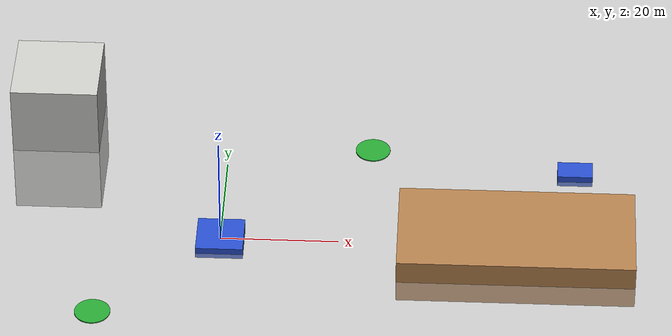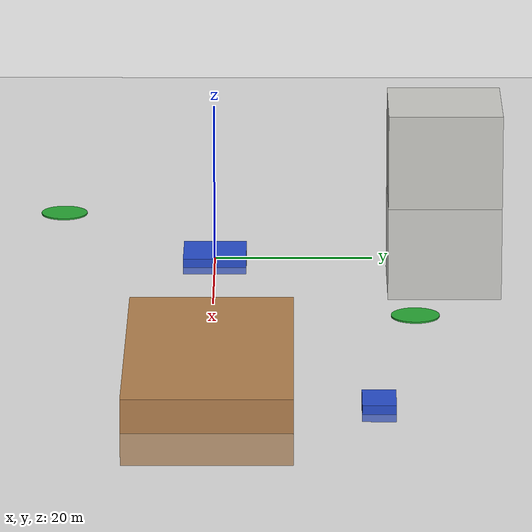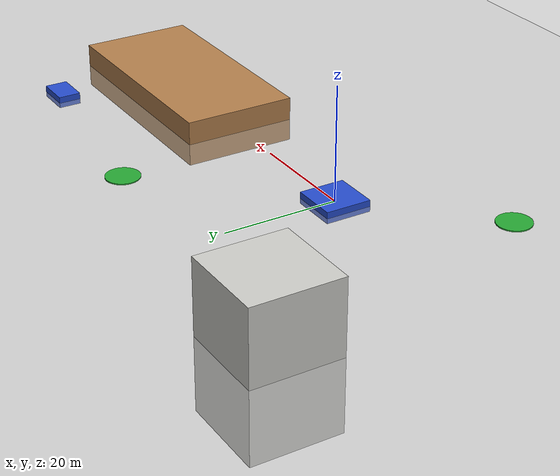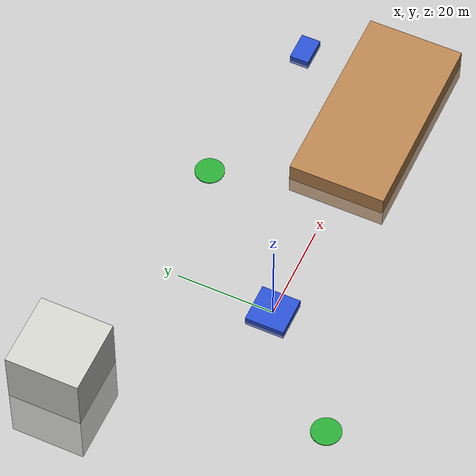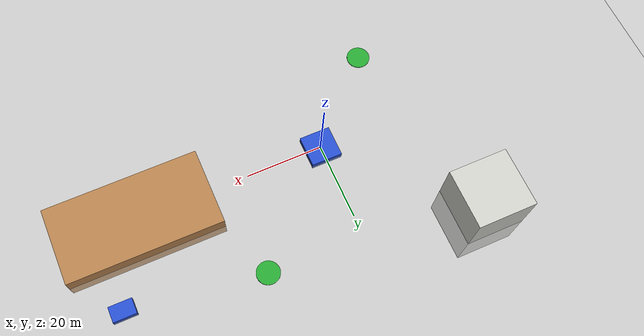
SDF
<?xml version="1.0" ?>
<sdf version="1.6">
  <world name="delivery_city">

    <!-- Physics settings -->
    <physics name="default_physics" default="0" type="ode">
      <gravity>0 0 -9.8066</gravity>
      <ode>
        <solver>
          <type>quick</type>
          <iters>10</iters>
          <sor>1.3</sor>
          <use_dynamic_moi_rescaling>0</use_dynamic_moi_rescaling>
        </solver>
        <constraints>
          <cfm>0</cfm>
          <erp>0.2</erp>
          <contact_max_correcting_vel>100</contact_max_correcting_vel>
          <contact_surface_layer>0.001</contact_surface_layer>
        </constraints>
      </ode>
      <max_step_size>0.002</max_step_size>
      <real_time_factor>1</real_time_factor>
      <real_time_update_rate>500</real_time_update_rate>
      <magnetic_field>6.0e-6 2.3e-5 -4.2e-5</magnetic_field>
    </physics>

    <!-- Scene settings -->
    <scene>
      <ambient>0.4 0.4 0.4 1</ambient>
      <background>0.7 0.7 1 1</background>
      <shadows>true</shadows>
      <grid>false</grid>
      <origin_visual>false</origin_visual>
    </scene>

    <!-- Lighting -->
    <include>
      <uri>model://sun</uri>
    </include>

    <!-- Ground plane -->
    <model name="ground_plane">
      <static>true</static>
      <link name="link">
        <collision name="collision">
          <geometry>
            <plane>
              <normal>0 0 1</normal>
              <size>5000 5000</size>
            </plane>
          </geometry>
          <surface>
            <friction>
              <ode>
                <mu>100</mu>
                <mu2>50</mu2>
              </ode>
            </friction>
          </surface>
        </collision>
        <visual name="visual">
          <cast_shadows>false</cast_shadows>
          <geometry>
            <plane>
              <normal>0 0 1</normal>
              <size>5000 5000</size>
            </plane>
          </geometry>
          <material>
            <script>
              <uri>file://media/materials/scripts/gazebo.material</uri>
              <name>Gazebo/Grey</name>
            </script>
          </material>
        </visual>
      </link>
    </model>

    <!-- Urban environment models -->
    <!-- Building 1 - Warehouse -->
    <model name="warehouse_1">
      <pose>50 0 0 0 0 0</pose>
      <static>true</static>
      <link name="link">
        <collision name="collision">
          <geometry>
            <box>
              <size>40 20 8</size>
            </box>
          </geometry>
        </collision>
        <visual name="visual">
          <geometry>
            <box>
              <size>40 20 8</size>
            </box>
          </geometry>
          <material>
            <script>
              <uri>file://media/materials/scripts/gazebo.material</uri>
              <name>Gazebo/Wood</name>
            </script>
          </material>
        </visual>
      </link>
    </model>

    <!-- Building 2 - Office Tower -->
    <model name="office_tower">
      <pose>-30 30 0 0 0 0</pose>
      <static>true</static>
      <link name="link">
        <collision name="collision">
          <geometry>
            <box>
              <size>15 15 25</size>
            </box>
          </geometry>
        </collision>
        <visual name="visual">
          <geometry>
            <box>
              <size>15 15 25</size>
            </box>
          </geometry>
          <material>
            <script>
              <uri>file://media/materials/scripts/gazebo.material</uri>
              <name>Gazebo/CeilingTiled</name>
            </script>
          </material>
        </visual>
      </link>
    </model>

    <!-- Delivery zones -->
    <!-- Delivery Zone 1 -->
    <model name="delivery_zone_1">
      <pose>25 25 0.1 0 0 0</pose>
      <static>true</static>
      <link name="link">
        <visual name="visual">
          <geometry>
            <cylinder>
              <radius>3</radius>
              <length>0.2</length>
            </cylinder>
          </geometry>
          <material>
            <script>
              <uri>file://media/materials/scripts/gazebo.material</uri>
              <name>Gazebo/Green</name>
            </script>
          </material>
        </visual>
      </link>
    </model>

    <!-- Delivery Zone 2 -->
    <model name="delivery_zone_2">
      <pose>-20 -20 0.1 0 0 0</pose>
      <static>true</static>
      <link name="link">
        <visual name="visual">
          <geometry>
            <cylinder>
              <radius>3</radius>
              <length>0.2</length>
            </cylinder>
          </geometry>
          <material>
            <script>
              <uri>file://media/materials/scripts/gazebo.material</uri>
              <name>Gazebo/Green</name>
            </script>
          </material>
        </visual>
      </link>
    </model>

    <!-- Charging Stations -->
    <!-- Charging Station 1 - Downtown Hub -->
    <model name="charging_station_1">
      <pose>0 0 0 0 0 0</pose>
      <static>true</static>
      <link name="link">
        <collision name="collision">
          <geometry>
            <box>
              <size>8 8 2</size>
            </box>
          </geometry>
        </collision>
        <visual name="visual">
          <geometry>
            <box>
              <size>8 8 2</size>
            </box>
          </geometry>
          <material>
            <script>
              <uri>file://media/materials/scripts/gazebo.material</uri>
              <name>Gazebo/Blue</name>
            </script>
          </material>
        </visual>
      </link>
    </model>

    <!-- Charging Station 2 - Industrial -->
    <model name="charging_station_2">
      <pose>60 20 0 0 0 0</pose>
      <static>true</static>
      <link name="link">
        <collision name="collision">
          <geometry>
            <box>
              <size>6 4 2</size>
            </box>
          </geometry>
        </collision>
        <visual name="visual">
          <geometry>
            <box>
              <size>6 4 2</size>
            </box>
          </geometry>
          <material>
            <script>
              <uri>file://media/materials/scripts/gazebo.material</uri>
              <name>Gazebo/Blue</name>
            </script>
          </material>
        </visual>
      </link>
    </model>

    <!-- Wind plugin for realistic flight conditions -->
    <plugin name="wind_plugin" filename="libgazebo_wind_plugin.so">
      <frameId>base_link</frameId>
      <linkName>base_link</linkName>
      <windVelocityMean>0 0 0</windVelocityMean>
      <windVelocityMax>5 5 0</windVelocityMax>
      <windVelocityVariance>2 2 0</windVelocityVariance>
      <windDirectionMean>0 0 0</windDirectionMean>
      <windDirectionVariance>0.5 0.5 0</windDirectionVariance>
    </plugin>

    <!-- ROS integration -->
    <plugin name="ros_interface_plugin" filename="libgazebo_ros_factory.so"/>

  </world>
</sdf>
